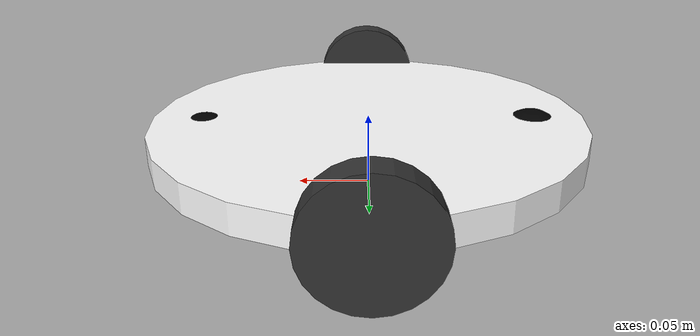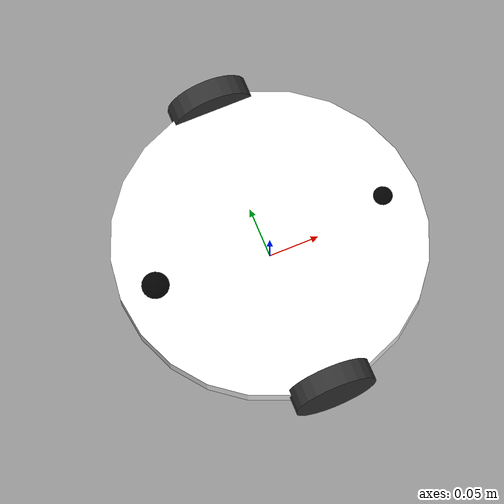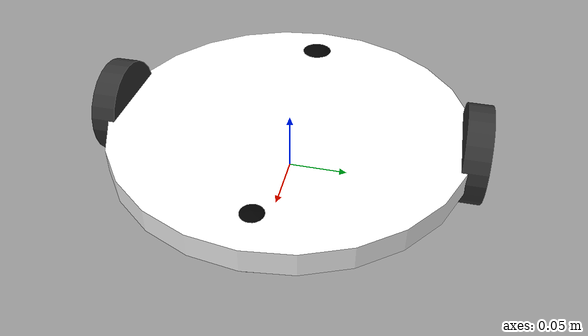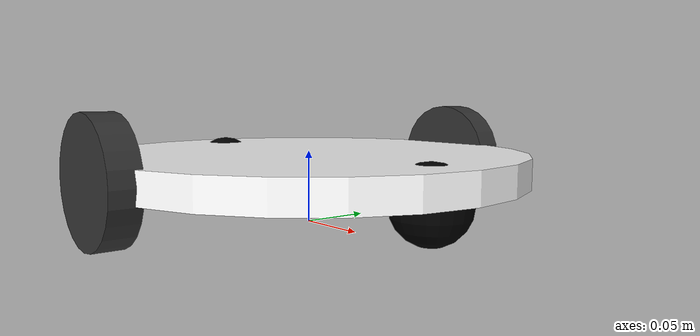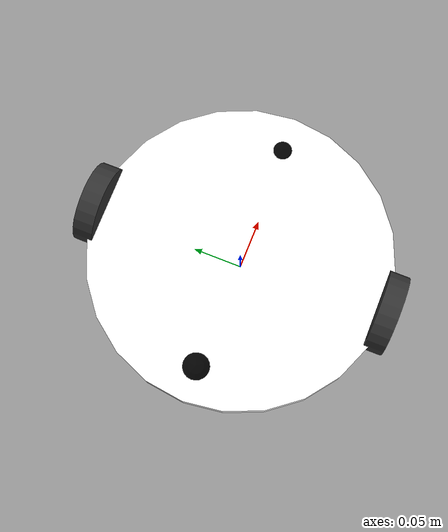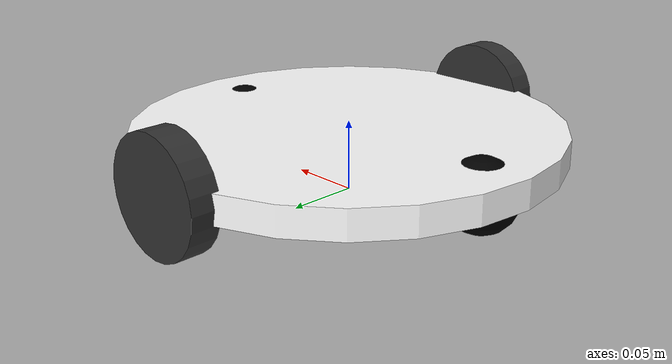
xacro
<?xml version="1.0"?>
<robot name="differential_wheeled_robot" xmlns:xacro="http://ros.org/wiki/xacro">

    <xacro:include filename="$(find diff_robot_description)/urdf/materials.xacro"/>
    <xacro:include filename="$(find diff_robot_description)/urdf/diff_robot.gazebo"/>

    <!-- PROPERTY LIST-->
    <!-- Wheels -->
    <xacro:property name="wheel_radius" value="0.04" />
    <xacro:property name="wheel_height" value="0.02" />
    <xacro:property name="wheel_mass" value="2.5" /> <!-- in kg -->

    <xacro:property name="base_x_origin_to_wheel_origin" value="0.25" />
    <xacro:property name="base_y_origin_to_wheel_origin" value="0.3" />
    <xacro:property name="base_z_origin_to_wheel_origin" value="0.0" />

    <!--All units in m-kg-s-radians unit system -->
    <xacro:property name="M_PI" value="3.1415926535897931" />
    <xacro:property name="M_PI_2" value="1.570796327" />
    <xacro:property name="DEG_TO_RAD" value="0.017453293" />

    <!-- Main body cylinder base -->
    <xacro:property name="base_height" value="0.02" />
    <xacro:property name="base_radius" value="0.15" />
    <xacro:property name="base_mass" value="5.0" /> <!-- in kg-->

    <!-- caster wheel radius, height and mass -->
    <xacro:property name="caster_height" value="0.04" />
    <xacro:property name="caster_radius" value="0.025" />
    <xacro:property name="caster_mass" value="0.5" />

    <!-- Hokuyo Laser scanner -->
    <xacro:property name="hokuyo_size" value="0.05" />

    <!-- Macro for calculating inertia of cylinder -->
    <xacro:macro name="cylinder_inertia" params="m r h">
        <inertia ixx="${m*(3*r*r+h*h)/12}" ixy = "0" ixz = "0"
                 iyy="${m*(3*r*r+h*h)/12}" iyz = "0"
                 izz="${m*r*r/2}" />
    </xacro:macro>

    <!-- ROBOT LINKS -->
    <!-- Base footprint-->
    <!-- base_footprint is a fictitious link(frame) that is on the ground right below base_link origin -->
    <link name="base_footprint"/>

    <!-- Base link -->
    <link name="base_link">
        <inertial>
            <mass value="${base_mass}" />
            <origin xyz="0 0 0" />
            <inertia ixx="0.0001" ixy = "0" ixz = "0"
                     iyy="0.0001" iyz = "0"
                     izz="0.0001" />
            <cylinder_inertia  m="${base_mass}" r="${base_radius}" h="${base_height}" />
        </inertial>
        <visual>
            <origin xyz="0 0 0" rpy="0 0 0" />
            <material name="White" />
            <geometry>
                <cylinder length="${base_height}" radius="${base_radius}" />
            </geometry>
        </visual>
        <collision>
            <origin xyz="0 0 0" rpy="0 0 0 " />
            <geometry>
                <cylinder length="${base_height}" radius="${base_radius}" />
            </geometry>
        </collision>
    </link>

    <!-- Caster front link -->
    <link name="caster_front_link">
        <visual>
            <origin xyz="0 0.02 0" rpy="${M_PI/2} 0 0" />
            <geometry>
	    	    <sphere radius="${caster_radius}" />
            </geometry>
            <material name="Black" />
        </visual>
        <collision>
            <geometry>
	    	    <sphere radius="${caster_radius}" />
            </geometry>
            <origin xyz="0 0.02 0" rpy="${M_PI/2} 0 0" />
        </collision>
        <inertial>
          <mass value="${caster_mass}" />
          <origin xyz="0 0 0" />
          <inertia ixx="0.001" ixy="0.0" ixz="0.0"
                   iyy="0.001" iyz="0.0"
                   izz="0.001" />
        </inertial>
    </link>

    <!-- Caster back link -->
    <link name="caster_back_link">
        <visual>
            <origin xyz="0.02 0.02 0 " rpy="${M_PI/2} 0 0" />
            <geometry>
        		<sphere radius="${caster_radius}" />
            </geometry>
            <material name="Black" />
        </visual>
        <collision>
            <geometry>
        		<sphere radius="${caster_radius}" />
            </geometry>
            <origin xyz="0.02 0.02 0 " rpy="${M_PI/2} 0 0" />
        </collision>
        <inertial>
            <mass value="${caster_mass}" />
            <origin xyz="0 0 0" />
            <inertia ixx="0.001" ixy="0.0" ixz="0.0"
                     iyy="0.001" iyz="0.0"
                     izz="0.001" />
        </inertial>
    </link>

    <!-- Right wheel -->
    <link name="right_wheel">
        <visual>
              <origin xyz="0 0 0" rpy="${M_PI/2} 0  0 " />
              <geometry>
                  <cylinder length="${wheel_height}" radius="${wheel_radius}" />
              </geometry>
              <material name="DarkGray" />
        </visual>
        <collision>
              <origin xyz="0 0 0" rpy="${M_PI/2} 0 0 " />
              <geometry>
                  <cylinder length="${wheel_height}" radius="${wheel_radius}" />
              </geometry>
        </collision>
        <inertial>
              <mass value="${wheel_mass}" />
              <origin xyz="0 0 0" />
    		<inertia ixx="0.001" ixy="0.0" ixz="0.0"
                       iyy="0.001" iyz="0.0"
                       izz="0.001" />
        </inertial>
    </link>

    <!-- Left wheel -->
    <link name="left_wheel">
        <visual>
              <origin xyz="0 0 0" rpy="${M_PI/2} 0  0 " />
              <geometry>
                  <cylinder length="${wheel_height}" radius="${wheel_radius}" />
              </geometry>
              <material name="DarkGray" />
        </visual>
        <collision>
              <origin xyz="0 0 0" rpy="${-M_PI/2} 0 0 " />
              <geometry>
                  <cylinder length="${wheel_height}" radius="${wheel_radius}" />
              </geometry>
        </collision>
        <inertial>
              <mass value="${wheel_mass}" />
              <origin xyz="0 0 0" />
    		<inertia ixx="0.001" ixy="0.0" ixz="0.0"
                       iyy="0.001" iyz="0.0"
                       izz="0.001" />
        </inertial>
    </link>

    <!-- ROBOT JOINTS -->
    <joint name="base_footprint_joint" type="fixed">
        <origin xyz="0 0 ${wheel_radius - base_z_origin_to_wheel_origin}" rpy="0 0 0" />
        <parent link="base_footprint"/>
        <child link="base_link" />
    </joint>

    <joint name="caster_front_joint" type="fixed">
        <parent link="base_link"/>
        <child link="caster_front_link"/>
        <origin xyz="0.115 0.0 0.007" rpy="${-M_PI/2} 0 0"/>
    </joint>

    <joint name="caster_back_joint" type="fixed">
        <parent link="base_link"/>
        <child link="caster_back_link"/>
        <origin xyz="-0.135 0.0 0.009" rpy="${-M_PI/2} 0 0"/>
    </joint>

    <joint name="right_wheel_joint" type="continuous">
      <parent link="base_link"/>
      <child link="right_wheel"/>
      <origin xyz="0 ${-0.5 * base_y_origin_to_wheel_origin} ${base_z_origin_to_wheel_origin}" rpy="0 0 0" />
      <axis xyz="0 1 0" rpy="0 0 0" />
      <limit effort="100" velocity="100"/>
      <joint_properties damping="0.0" friction="0.0"/>
    </joint>

    <joint name="left_wheel_joint" type="continuous">
      <parent link="base_link"/>
      <child link="left_wheel"/>
      <origin xyz="0 ${0.5 * base_y_origin_to_wheel_origin} ${base_z_origin_to_wheel_origin}" rpy="0 0 0" />
      <axis xyz="0 1 0" rpy="0 0 0" />
      <limit effort="100" velocity="100"/>
      <joint_properties damping="0.0" friction="0.0"/>
    </joint>

    <!-- TRANSMISSION -->
    <transmission name="right_wheel_joint_trans">
        <type>transmission_interface/SimpleTransmission</type>
        <joint name="right_wheel_joint" />
        <actuator name="right_wheel_joint_motor">
            <hardwareInterface>EffortJointInterface</hardwareInterface>
            <mechanicalReduction>1</mechanicalReduction>
        </actuator>
    </transmission>

    <transmission name="left_wheel_joint_trans">
        <type>transmission_interface/SimpleTransmission</type>
        <joint name="left_wheel_joint" />
        <actuator name="left_wheel_joint_motor">
            <hardwareInterface>EffortJointInterface</hardwareInterface>
            <mechanicalReduction>1</mechanicalReduction>
        </actuator>
    </transmission>

</robot>

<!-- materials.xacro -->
<robot>
    <!-- Defining colors used in the robot -->
    <material name="Black">
        <color rgba="0 0 0 1"/>
    </material>

    <material name="Red">
        <color rgba="0.8 0 0 1"/>
    </material>

    <material name="White">
        <color rgba="1 1 1 1"/>
    </material>

    <material name="Blue">
        <color rgba="0 0 1 1"/>
    </material>

    <material name="DarkGray">
        <color rgba="${50/255} ${50/255} ${50/255} 1"/>
    </material>
</robot>
